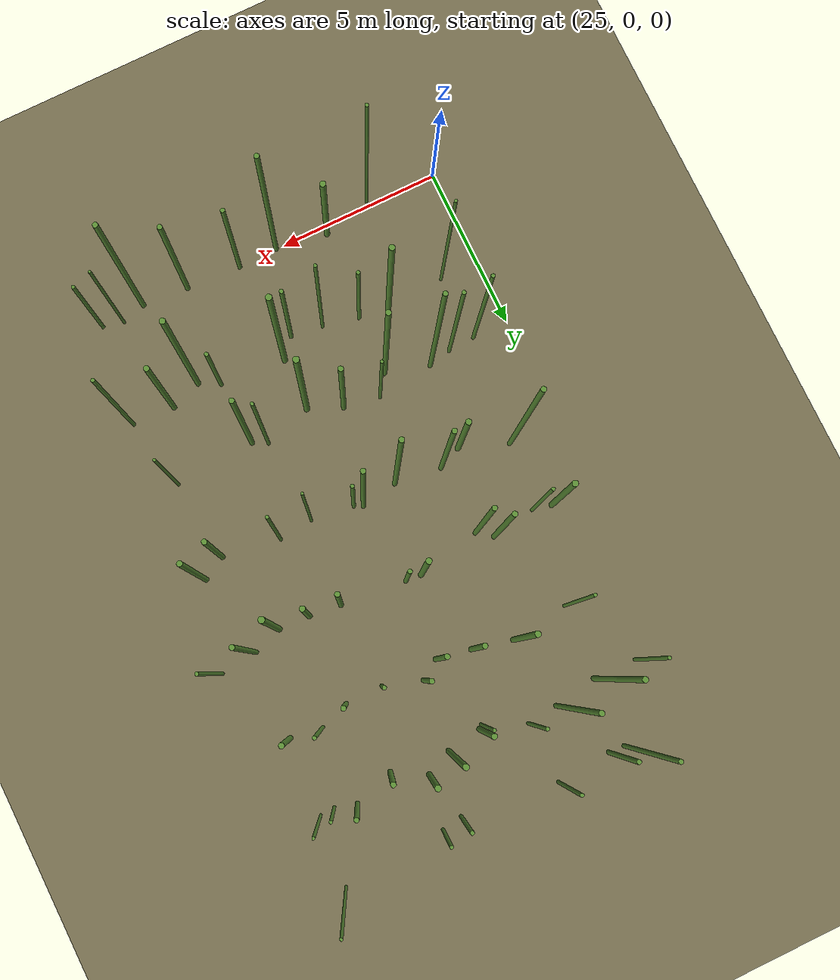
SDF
<sdf version="1.9">
 <world name="bamboo_field">
  <model name="ground_plane">
   <static>true</static>
   <link name="link">
    <collision name="collision">
     <geometry><plane><normal>0 0 1</normal><size>80.0 80.0</size></plane></geometry>
    </collision>
    <visual name="visual">
     <geometry><plane><normal>0 0 1</normal><size>80.0 80.0</size></plane></geometry>
     <material><diffuse>0.45 0.42 0.30 1</diffuse></material>
    </visual>
   </link>
  </model>
  <model name="bamboo_1063">
   <static>true</static>
   <pose>27.151205299307197 -0.18579587122227292 3.603537357282979 0 0 0</pose>
   <link name="link">
    <collision name="collision">
     <geometry>
      <cylinder><radius>0.051409100196508434</radius><length>7.207074714565958</length></cylinder>
     </geometry>
    </collision>
    <visual name="visual">
     <geometry>
      <cylinder><radius>0.051409100196508434</radius><length>7.207074714565958</length></cylinder>
     </geometry>
     <material><diffuse>0.35 0.55 0.20 1</diffuse><specular>0.1 0.1 0.1 1</specular></material>
    </visual>
   </link>
  </model>
  <model name="bamboo_1065">
   <static>true</static>
   <pose>28.669662617451696 0.21504905227408633 2.1695564290628377 0 0 0</pose>
   <link name="link">
    <collision name="collision">
     <geometry>
      <cylinder><radius>0.08718214201539054</radius><length>4.3391128581256755</length></cylinder>
     </geometry>
    </collision>
    <visual name="visual">
     <geometry>
      <cylinder><radius>0.08718214201539054</radius><length>4.3391128581256755</length></cylinder>
     </geometry>
     <material><diffuse>0.35 0.55 0.20 1</diffuse><specular>0.1 0.1 0.1 1</specular></material>
    </visual>
   </link>
  </model>
  <model name="bamboo_1066">
   <static>true</static>
   <pose>30.259173124526615 -0.03018710128848845 3.80502226314779 0 0 0</pose>
   <link name="link">
    <collision name="collision">
     <geometry><cylinder><radius>0.072073287722078</radius><length>7.61004452629558</length></cylinder></geometry>
    </collision>
    <visual name="visual">
     <geometry><cylinder><radius>0.072073287722078</radius><length>7.61004452629558</length></cylinder></geometry>
     <material><diffuse>0.35 0.55 0.20 1</diffuse><specular>0.1 0.1 0.1 1</specular></material>
    </visual>
   </link>
  </model>
  <model name="bamboo_1067">
   <static>true</static>
   <pose>31.485456023275006 0.004297065397154798 2.5914488497272923 0 0 0</pose>
   <link name="link">
    <collision name="collision">
     <geometry>
      <cylinder><radius>0.06598891816014839</radius><length>5.182897699454585</length></cylinder>
     </geometry>
    </collision>
    <visual name="visual">
     <geometry>
      <cylinder><radius>0.06598891816014839</radius><length>5.182897699454585</length></cylinder>
     </geometry>
     <material><diffuse>0.35 0.55 0.20 1</diffuse><specular>0.1 0.1 0.1 1</specular></material>
    </visual>
   </link>
  </model>
  <model name="bamboo_1069">
   <static>true</static>
   <pose>33.18020841615441 -0.0912146910937724 2.892378101406684 0 0 0</pose>
   <link name="link">
    <collision name="collision">
     <geometry>
      <cylinder><radius>0.07501475319413023</radius><length>5.784756202813368</length></cylinder>
     </geometry>
    </collision>
    <visual name="visual">
     <geometry>
      <cylinder><radius>0.07501475319413023</radius><length>5.784756202813368</length></cylinder>
     </geometry>
     <material><diffuse>0.35 0.55 0.20 1</diffuse><specular>0.1 0.1 0.1 1</specular></material>
    </visual>
   </link>
  </model>
  <model name="bamboo_1070">
   <static>true</static>
   <pose>34.599045712968866 -0.1891584008417987 3.775349793014393 0 0 0</pose>
   <link name="link">
    <collision name="collision">
     <geometry>
      <cylinder><radius>0.07487354827867843</radius><length>7.550699586028786</length></cylinder>
     </geometry>
    </collision>
    <visual name="visual">
     <geometry>
      <cylinder><radius>0.07487354827867843</radius><length>7.550699586028786</length></cylinder>
     </geometry>
     <material><diffuse>0.35 0.55 0.20 1</diffuse><specular>0.1 0.1 0.1 1</specular></material>
    </visual>
   </link>
  </model>
  <model name="bamboo_1071">
   <static>true</static>
   <pose>35.33843892711623 0.04572416082049302 2.668985849469804 0 0 0</pose>
   <link name="link">
    <collision name="collision">
     <geometry>
      <cylinder><radius>0.04184850861781593</radius><length>5.337971698939608</length></cylinder>
     </geometry>
    </collision>
    <visual name="visual">
     <geometry>
      <cylinder><radius>0.04184850861781593</radius><length>5.337971698939608</length></cylinder>
     </geometry>
     <material><diffuse>0.35 0.55 0.20 1</diffuse><specular>0.1 0.1 0.1 1</specular></material>
    </visual>
   </link>
  </model>
  <model name="bamboo_1072">
   <static>true</static>
   <pose>35.96752220383172 -0.10737728921609763 2.185639135713452 0 0 0</pose>
   <link name="link">
    <collision name="collision">
     <geometry>
      <cylinder><radius>0.054196392973413506</radius><length>4.371278271426904</length></cylinder>
     </geometry>
    </collision>
    <visual name="visual">
     <geometry>
      <cylinder><radius>0.054196392973413506</radius><length>4.371278271426904</length></cylinder>
     </geometry>
     <material><diffuse>0.35 0.55 0.20 1</diffuse><specular>0.1 0.1 0.1 1</specular></material>
    </visual>
   </link>
  </model>
  <model name="bamboo_1133">
   <static>true</static>
   <pose>26.191152922379885 2.9859162162090804 3.503926715420306 0 0 0</pose>
   <link name="link">
    <collision name="collision">
     <geometry>
      <cylinder><radius>0.04479151257027014</radius><length>7.007853430840612</length></cylinder>
     </geometry>
    </collision>
    <visual name="visual">
     <geometry>
      <cylinder><radius>0.04479151257027014</radius><length>7.007853430840612</length></cylinder>
     </geometry>
     <material><diffuse>0.35 0.55 0.20 1</diffuse><specular>0.1 0.1 0.1 1</specular></material>
    </visual>
   </link>
  </model>
  <model name="bamboo_1134">
   <static>true</static>
   <pose>28.083163688541298 3.222522515503693 3.2384611085247683 0 0 0</pose>
   <link name="link">
    <collision name="collision">
     <geometry>
      <cylinder><radius>0.08399690837420921</radius><length>6.476922217049537</length></cylinder>
     </geometry>
    </collision>
    <visual name="visual">
     <geometry>
      <cylinder><radius>0.08399690837420921</radius><length>6.476922217049537</length></cylinder>
     </geometry>
     <material><diffuse>0.35 0.55 0.20 1</diffuse><specular>0.1 0.1 0.1 1</specular></material>
    </visual>
   </link>
  </model>
  <model name="bamboo_1135">
   <static>true</static>
   <pose>28.930486568744914 2.982835694298273 2.3849626348615676 0 0 0</pose>
   <link name="link">
    <collision name="collision">
     <geometry>
      <cylinder><radius>0.0564096834465166</radius><length>4.769925269723135</length></cylinder>
     </geometry>
    </collision>
    <visual name="visual">
     <geometry>
      <cylinder><radius>0.0564096834465166</radius><length>4.769925269723135</length></cylinder>
     </geometry>
     <material><diffuse>0.35 0.55 0.20 1</diffuse><specular>0.1 0.1 0.1 1</specular></material>
    </visual>
   </link>
  </model>
  <model name="bamboo_1136">
   <static>true</static>
   <pose>30.03177621495902 2.745613390471645 3.1464242655930166 0 0 0</pose>
   <link name="link">
    <collision name="collision">
     <geometry>
      <cylinder><radius>0.04968072708858921</radius><length>6.292848531186033</length></cylinder>
     </geometry>
    </collision>
    <visual name="visual">
     <geometry>
      <cylinder><radius>0.04968072708858921</radius><length>6.292848531186033</length></cylinder>
     </geometry>
     <material><diffuse>0.35 0.55 0.20 1</diffuse><specular>0.1 0.1 0.1 1</specular></material>
    </visual>
   </link>
  </model>
  <model name="bamboo_1137">
   <static>true</static>
   <pose>31.011942310209722 2.608556946933893 2.4863049557458266 0 0 0</pose>
   <link name="link">
    <collision name="collision">
     <geometry>
      <cylinder><radius>0.06223121568036206</radius><length>4.972609911491653</length></cylinder>
     </geometry>
    </collision>
    <visual name="visual">
     <geometry>
      <cylinder><radius>0.06223121568036206</radius><length>4.972609911491653</length></cylinder>
     </geometry>
     <material><diffuse>0.35 0.55 0.20 1</diffuse><specular>0.1 0.1 0.1 1</specular></material>
    </visual>
   </link>
  </model>
  <model name="bamboo_1138">
   <static>true</static>
   <pose>31.496522912792457 3.1858684559576793 3.5087472700736466 0 0 0</pose>
   <link name="link">
    <collision name="collision">
     <geometry>
      <cylinder><radius>0.08798706756968236</radius><length>7.017494540147293</length></cylinder>
     </geometry>
    </collision>
    <visual name="visual">
     <geometry>
      <cylinder><radius>0.08798706756968236</radius><length>7.017494540147293</length></cylinder>
     </geometry>
     <material><diffuse>0.35 0.55 0.20 1</diffuse><specular>0.1 0.1 0.1 1</specular></material>
    </visual>
   </link>
  </model>
  <model name="bamboo_1139">
   <static>true</static>
   <pose>33.52286711488914 3.041023380964454 2.0161636846911994 0 0 0</pose>
   <link name="link">
    <collision name="collision">
     <geometry>
      <cylinder><radius>0.05844149975861276</radius><length>4.032327369382399</length></cylinder>
     </geometry>
    </collision>
    <visual name="visual">
     <geometry>
      <cylinder><radius>0.05844149975861276</radius><length>4.032327369382399</length></cylinder>
     </geometry>
     <material><diffuse>0.35 0.55 0.20 1</diffuse><specular>0.1 0.1 0.1 1</specular></material>
    </visual>
   </link>
  </model>
  <model name="bamboo_1140">
   <static>true</static>
   <pose>34.130729032915745 2.702998109685367 3.717404411056746 0 0 0</pose>
   <link name="link">
    <collision name="collision">
     <geometry>
      <cylinder><radius>0.08175874648967754</radius><length>7.434808822113492</length></cylinder>
     </geometry>
    </collision>
    <visual name="visual">
     <geometry>
      <cylinder><radius>0.08175874648967754</radius><length>7.434808822113492</length></cylinder>
     </geometry>
     <material><diffuse>0.35 0.55 0.20 1</diffuse><specular>0.1 0.1 0.1 1</specular></material>
    </visual>
   </link>
  </model>
  <model name="bamboo_1141">
   <static>true</static>
   <pose>35.0829370933037 3.052560222677856 2.6831038473450475 0 0 0</pose>
   <link name="link">
    <collision name="collision">
     <geometry>
      <cylinder><radius>0.07926319035455726</radius><length>5.366207694690095</length></cylinder>
     </geometry>
    </collision>
    <visual name="visual">
     <geometry>
      <cylinder><radius>0.07926319035455726</radius><length>5.366207694690095</length></cylinder>
     </geometry>
     <material><diffuse>0.35 0.55 0.20 1</diffuse><specular>0.1 0.1 0.1 1</specular></material>
    </visual>
   </link>
  </model>
  <model name="bamboo_1142">
   <static>true</static>
   <pose>36.38234972073929 2.9974853150282 3.1568214977696076 0 0 0</pose>
   <link name="link">
    <collision name="collision">
     <geometry>
      <cylinder><radius>0.05655727172345246</radius><length>6.313642995539215</length></cylinder>
     </geometry>
    </collision>
    <visual name="visual">
     <geometry>
      <cylinder><radius>0.05655727172345246</radius><length>6.313642995539215</length></cylinder>
     </geometry>
     <material><diffuse>0.35 0.55 0.20 1</diffuse><specular>0.1 0.1 0.1 1</specular></material>
    </visual>
   </link>
  </model>
  <model name="bamboo_1204">
   <static>true</static>
   <pose>26.11127046764274 5.022055672164562 3.270706903364007 0 0 0</pose>
   <link name="link">
    <collision name="collision">
     <geometry>
      <cylinder><radius>0.056602327367414176</radius><length>6.541413806728014</length></cylinder>
     </geometry>
    </collision>
    <visual name="visual">
     <geometry>
      <cylinder><radius>0.056602327367414176</radius><length>6.541413806728014</length></cylinder>
     </geometry>
     <material><diffuse>0.35 0.55 0.20 1</diffuse><specular>0.1 0.1 0.1 1</specular></material>
    </visual>
   </link>
  </model>
  <model name="bamboo_1205">
   <static>true</static>
   <pose>26.942641070186752 5.067138769332645 3.2170666443124896 0 0 0</pose>
   <link name="link">
    <collision name="collision">
     <geometry>
      <cylinder><radius>0.056755260906237656</radius><length>6.434133288624979</length></cylinder>
     </geometry>
    </collision>
    <visual name="visual">
     <geometry>
      <cylinder><radius>0.056755260906237656</radius><length>6.434133288624979</length></cylinder>
     </geometry>
     <material><diffuse>0.35 0.55 0.20 1</diffuse><specular>0.1 0.1 0.1 1</specular></material>
    </visual>
   </link>
  </model>
  <model name="bamboo_1206">
   <static>true</static>
   <pose>27.65217614514598 5.230922861800224 3.976761728723223 0 0 0</pose>
   <link name="link">
    <collision name="collision">
     <geometry>
      <cylinder><radius>0.06937342737042498</radius><length>7.953523457446446</length></cylinder>
     </geometry>
    </collision>
    <visual name="visual">
     <geometry>
      <cylinder><radius>0.06937342737042498</radius><length>7.953523457446446</length></cylinder>
     </geometry>
     <material><diffuse>0.35 0.55 0.20 1</diffuse><specular>0.1 0.1 0.1 1</specular></material>
    </visual>
   </link>
  </model>
  <model name="bamboo_1207">
   <static>true</static>
   <pose>28.981900142488165 4.841424901180821 3.514491487198259 0 0 0</pose>
   <link name="link">
    <collision name="collision">
     <geometry>
      <cylinder><radius>0.07689566419590185</radius><length>7.028982974396518</length></cylinder>
     </geometry>
    </collision>
    <visual name="visual">
     <geometry>
      <cylinder><radius>0.07689566419590185</radius><length>7.028982974396518</length></cylinder>
     </geometry>
     <material><diffuse>0.35 0.55 0.20 1</diffuse><specular>0.1 0.1 0.1 1</specular></material>
    </visual>
   </link>
  </model>
  <model name="bamboo_1208">
   <static>true</static>
   <pose>29.424407934831084 5.445865187276462 2.4087706601923538 0 0 0</pose>
   <link name="link">
    <collision name="collision">
     <geometry>
      <cylinder><radius>0.04758352926960138</radius><length>4.8175413203847075</length></cylinder>
     </geometry>
    </collision>
    <visual name="visual">
     <geometry>
      <cylinder><radius>0.04758352926960138</radius><length>4.8175413203847075</length></cylinder>
     </geometry>
     <material><diffuse>0.35 0.55 0.20 1</diffuse><specular>0.1 0.1 0.1 1</specular></material>
    </visual>
   </link>
  </model>
  <model name="bamboo_1209">
   <static>true</static>
   <pose>30.531791819700995 5.250000239712782 2.6573797037343234 0 0 0</pose>
   <link name="link">
    <collision name="collision">
     <geometry>
      <cylinder><radius>0.07696278180082586</radius><length>5.314759407468647</length></cylinder>
     </geometry>
    </collision>
    <visual name="visual">
     <geometry>
      <cylinder><radius>0.07696278180082586</radius><length>5.314759407468647</length></cylinder>
     </geometry>
     <material><diffuse>0.35 0.55 0.20 1</diffuse><specular>0.1 0.1 0.1 1</specular></material>
    </visual>
   </link>
  </model>
  <model name="bamboo_1210">
   <static>true</static>
   <pose>31.543219435425137 4.816064122193548 3.2960928501592655 0 0 0</pose>
   <link name="link">
    <collision name="collision">
     <geometry>
      <cylinder><radius>0.08887837522286675</radius><length>6.592185700318531</length></cylinder>
     </geometry>
    </collision>
    <visual name="visual">
     <geometry>
      <cylinder><radius>0.08887837522286675</radius><length>6.592185700318531</length></cylinder>
     </geometry>
     <material><diffuse>0.35 0.55 0.20 1</diffuse><specular>0.1 0.1 0.1 1</specular></material>
    </visual>
   </link>
  </model>
  <model name="bamboo_1211">
   <static>true</static>
   <pose>33.01471724091726 5.264983002950912 3.078623504252344 0 0 0</pose>
   <link name="link">
    <collision name="collision">
     <geometry>
      <cylinder><radius>0.05211244918622726</radius><length>6.157247008504688</length></cylinder>
     </geometry>
    </collision>
    <visual name="visual">
     <geometry>
      <cylinder><radius>0.05211244918622726</radius><length>6.157247008504688</length></cylinder>
     </geometry>
     <material><diffuse>0.35 0.55 0.20 1</diffuse><specular>0.1 0.1 0.1 1</specular></material>
    </visual>
   </link>
  </model>
  <model name="bamboo_1212">
   <static>true</static>
   <pose>33.446450164776884 5.024624683345163 3.216126395355251 0 0 0</pose>
   <link name="link">
    <collision name="collision">
     <geometry>
      <cylinder><radius>0.07597511098624916</radius><length>6.432252790710502</length></cylinder>
     </geometry>
    </collision>
    <visual name="visual">
     <geometry>
      <cylinder><radius>0.07597511098624916</radius><length>6.432252790710502</length></cylinder>
     </geometry>
     <material><diffuse>0.35 0.55 0.20 1</diffuse><specular>0.1 0.1 0.1 1</specular></material>
    </visual>
   </link>
  </model>
  <model name="bamboo_1213">
   <static>true</static>
   <pose>35.945518826004374 5.21432024543746 2.4084400255316645 0 0 0</pose>
   <link name="link">
    <collision name="collision">
     <geometry>
      <cylinder><radius>0.04707660054351185</radius><length>4.816880051063329</length></cylinder>
     </geometry>
    </collision>
    <visual name="visual">
     <geometry>
      <cylinder><radius>0.04707660054351185</radius><length>4.816880051063329</length></cylinder>
     </geometry>
     <material><diffuse>0.35 0.55 0.20 1</diffuse><specular>0.1 0.1 0.1 1</specular></material>
    </visual>
   </link>
  </model>
  <model name="bamboo_1268">
   <static>true</static>
   <pose>26.564888147075127 8.379139494467786 3.9769683757190517 0 0 0</pose>
   <link name="link">
    <collision name="collision">
     <geometry>
      <cylinder><radius>0.0739158903008324</radius><length>7.953936751438103</length></cylinder>
     </geometry>
    </collision>
    <visual name="visual">
     <geometry>
      <cylinder><radius>0.0739158903008324</radius><length>7.953936751438103</length></cylinder>
     </geometry>
     <material><diffuse>0.35 0.55 0.20 1</diffuse><specular>0.1 0.1 0.1 1</specular></material>
    </visual>
   </link>
  </model>
  <model name="bamboo_1269">
   <static>true</static>
   <pose>28.014319883394656 7.839603801937317 2.19209546380615 0 0 0</pose>
   <link name="link">
    <collision name="collision">
     <geometry><cylinder><radius>0.08629926683617066</radius><length>4.3841909276123</length></cylinder></geometry>
    </collision>
    <visual name="visual">
     <geometry><cylinder><radius>0.08629926683617066</radius><length>4.3841909276123</length></cylinder></geometry>
     <material><diffuse>0.35 0.55 0.20 1</diffuse><specular>0.1 0.1 0.1 1</specular></material>
    </visual>
   </link>
  </model>
  <model name="bamboo_1270">
   <static>true</static>
   <pose>28.73220647896587 8.152741568985803 3.186784780529461 0 0 0</pose>
   <link name="link">
    <collision name="collision">
     <geometry>
      <cylinder><radius>0.07250489024016477</radius><length>6.373569561058922</length></cylinder>
     </geometry>
    </collision>
    <visual name="visual">
     <geometry>
      <cylinder><radius>0.07250489024016477</radius><length>6.373569561058922</length></cylinder>
     </geometry>
     <material><diffuse>0.35 0.55 0.20 1</diffuse><specular>0.1 0.1 0.1 1</specular></material>
    </visual>
   </link>
  </model>
  <model name="bamboo_1271">
   <static>true</static>
   <pose>30.168295241206735 7.976620934886778 3.9091107274962513 0 0 0</pose>
   <link name="link">
    <collision name="collision">
     <geometry>
      <cylinder><radius>0.07439920529579946</radius><length>7.818221454992503</length></cylinder>
     </geometry>
    </collision>
    <visual name="visual">
     <geometry>
      <cylinder><radius>0.07439920529579946</radius><length>7.818221454992503</length></cylinder>
     </geometry>
     <material><diffuse>0.35 0.55 0.20 1</diffuse><specular>0.1 0.1 0.1 1</specular></material>
    </visual>
   </link>
  </model>
  <model name="bamboo_1272">
   <static>true</static>
   <pose>31.293482356932326 8.169078441874051 3.555461622233298 0 0 0</pose>
   <link name="link">
    <collision name="collision">
     <geometry>
      <cylinder><radius>0.0729259425735515</radius><length>7.110923244466596</length></cylinder>
     </geometry>
    </collision>
    <visual name="visual">
     <geometry>
      <cylinder><radius>0.0729259425735515</radius><length>7.110923244466596</length></cylinder>
     </geometry>
     <material><diffuse>0.35 0.55 0.20 1</diffuse><specular>0.1 0.1 0.1 1</specular></material>
    </visual>
   </link>
  </model>
  <model name="bamboo_1273">
   <static>true</static>
   <pose>31.55598761380594 8.056313695040576 2.240000771233851 0 0 0</pose>
   <link name="link">
    <collision name="collision">
     <geometry>
      <cylinder><radius>0.05836615279749126</radius><length>4.480001542467702</length></cylinder>
     </geometry>
    </collision>
    <visual name="visual">
     <geometry>
      <cylinder><radius>0.05836615279749126</radius><length>4.480001542467702</length></cylinder>
     </geometry>
     <material><diffuse>0.35 0.55 0.20 1</diffuse><specular>0.1 0.1 0.1 1</specular></material>
    </visual>
   </link>
  </model>
  <model name="bamboo_1274">
   <static>true</static>
   <pose>32.866500000169715 7.905468151273225 3.1459638176463445 0 0 0</pose>
   <link name="link">
    <collision name="collision">
     <geometry>
      <cylinder><radius>0.04115133806573245</radius><length>6.291927635292689</length></cylinder>
     </geometry>
    </collision>
    <visual name="visual">
     <geometry>
      <cylinder><radius>0.04115133806573245</radius><length>6.291927635292689</length></cylinder>
     </geometry>
     <material><diffuse>0.35 0.55 0.20 1</diffuse><specular>0.1 0.1 0.1 1</specular></material>
    </visual>
   </link>
  </model>
  <model name="bamboo_1275">
   <static>true</static>
   <pose>33.91501997656277 8.017420321431002 2.96838295459679 0 0 0</pose>
   <link name="link">
    <collision name="collision">
     <geometry>
      <cylinder><radius>0.04905482969580586</radius><length>5.93676590919358</length></cylinder>
     </geometry>
    </collision>
    <visual name="visual">
     <geometry>
      <cylinder><radius>0.04905482969580586</radius><length>5.93676590919358</length></cylinder>
     </geometry>
     <material><diffuse>0.35 0.55 0.20 1</diffuse><specular>0.1 0.1 0.1 1</specular></material>
    </visual>
   </link>
  </model>
  <model name="bamboo_1276">
   <static>true</static>
   <pose>35.686778438561205 7.727683258282409 2.369779697140016 0 0 0</pose>
   <link name="link">
    <collision name="collision">
     <geometry>
      <cylinder><radius>0.07976124135312104</radius><length>4.739559394280032</length></cylinder>
     </geometry>
    </collision>
    <visual name="visual">
     <geometry>
      <cylinder><radius>0.07976124135312104</radius><length>4.739559394280032</length></cylinder>
     </geometry>
     <material><diffuse>0.35 0.55 0.20 1</diffuse><specular>0.1 0.1 0.1 1</specular></material>
    </visual>
   </link>
  </model>
  <model name="bamboo_1277">
   <static>true</static>
   <pose>36.40342572916701 8.123165863990275 2.977126524805004 0 0 0</pose>
   <link name="link">
    <collision name="collision">
     <geometry>
      <cylinder><radius>0.08060981293398427</radius><length>5.954253049610008</length></cylinder>
     </geometry>
    </collision>
    <visual name="visual">
     <geometry>
      <cylinder><radius>0.08060981293398427</radius><length>5.954253049610008</length></cylinder>
     </geometry>
     <material><diffuse>0.35 0.55 0.20 1</diffuse><specular>0.1 0.1 0.1 1</specular></material>
    </visual>
   </link>
  </model>
  <model name="bamboo_1338">
   <static>true</static>
   <pose>26.26337637309631 10.567030056091257 2.331036440100445 0 0 0</pose>
   <link name="link">
    <collision name="collision">
     <geometry>
      <cylinder><radius>0.08857692087999937</radius><length>4.66207288020089</length></cylinder>
     </geometry>
    </collision>
    <visual name="visual">
     <geometry>
      <cylinder><radius>0.08857692087999937</radius><length>4.66207288020089</length></cylinder>
     </geometry>
     <material><diffuse>0.35 0.55 0.20 1</diffuse><specular>0.1 0.1 0.1 1</specular></material>
    </visual>
   </link>
  </model>
  <model name="bamboo_1339">
   <static>true</static>
   <pose>26.86161792729646 10.450590167619369 2.368132680708178 0 0 0</pose>
   <link name="link">
    <collision name="collision">
     <geometry>
      <cylinder><radius>0.053574709447817725</radius><length>4.736265361416356</length></cylinder>
     </geometry>
    </collision>
    <visual name="visual">
     <geometry>
      <cylinder><radius>0.053574709447817725</radius><length>4.736265361416356</length></cylinder>
     </geometry>
     <material><diffuse>0.35 0.55 0.20 1</diffuse><specular>0.1 0.1 0.1 1</specular></material>
    </visual>
   </link>
  </model>
  <model name="bamboo_1340">
   <static>true</static>
   <pose>28.223732302437885 10.665676003871233 2.910881973859932 0 0 0</pose>
   <link name="link">
    <collision name="collision">
     <geometry>
      <cylinder><radius>0.07953234386175709</radius><length>5.821763947719864</length></cylinder>
     </geometry>
    </collision>
    <visual name="visual">
     <geometry>
      <cylinder><radius>0.07953234386175709</radius><length>5.821763947719864</length></cylinder>
     </geometry>
     <material><diffuse>0.35 0.55 0.20 1</diffuse><specular>0.1 0.1 0.1 1</specular></material>
    </visual>
   </link>
  </model>
  <model name="bamboo_1341">
   <static>true</static>
   <pose>28.669444923898258 10.330053488284559 3.1043018418416883 0 0 0</pose>
   <link name="link">
    <collision name="collision">
     <geometry>
      <cylinder><radius>0.07541273521949152</radius><length>6.208603683683377</length></cylinder>
     </geometry>
    </collision>
    <visual name="visual">
     <geometry>
      <cylinder><radius>0.07541273521949152</radius><length>6.208603683683377</length></cylinder>
     </geometry>
     <material><diffuse>0.35 0.55 0.20 1</diffuse><specular>0.1 0.1 0.1 1</specular></material>
    </visual>
   </link>
  </model>
  <model name="bamboo_1342">
   <static>true</static>
   <pose>30.65764597937186 10.747813949201618 2.540869710942847 0 0 0</pose>
   <link name="link">
    <collision name="collision">
     <geometry>
      <cylinder><radius>0.08636239786929316</radius><length>5.081739421885694</length></cylinder>
     </geometry>
    </collision>
    <visual name="visual">
     <geometry>
      <cylinder><radius>0.08636239786929316</radius><length>5.081739421885694</length></cylinder>
     </geometry>
     <material><diffuse>0.35 0.55 0.20 1</diffuse><specular>0.1 0.1 0.1 1</specular></material>
    </visual>
   </link>
  </model>
  <model name="bamboo_1343">
   <static>true</static>
   <pose>31.147037615494835 10.721736437254288 2.002799922952734 0 0 0</pose>
   <link name="link">
    <collision name="collision">
     <geometry>
      <cylinder><radius>0.06672974620617361</radius><length>4.005599845905468</length></cylinder>
     </geometry>
    </collision>
    <visual name="visual">
     <geometry>
      <cylinder><radius>0.06672974620617361</radius><length>4.005599845905468</length></cylinder>
     </geometry>
     <material><diffuse>0.35 0.55 0.20 1</diffuse><specular>0.1 0.1 0.1 1</specular></material>
    </visual>
   </link>
  </model>
  <model name="bamboo_1344">
   <static>true</static>
   <pose>33.16168046168404 10.525369360537939 2.816685764466759 0 0 0</pose>
   <link name="link">
    <collision name="collision">
     <geometry>
      <cylinder><radius>0.07610397954792217</radius><length>5.633371528933518</length></cylinder>
     </geometry>
    </collision>
    <visual name="visual">
     <geometry>
      <cylinder><radius>0.07610397954792217</radius><length>5.633371528933518</length></cylinder>
     </geometry>
     <material><diffuse>0.35 0.55 0.20 1</diffuse><specular>0.1 0.1 0.1 1</specular></material>
    </visual>
   </link>
  </model>
  <model name="bamboo_1345">
   <static>true</static>
   <pose>34.132207635558856 10.421839429599963 2.4385591854226094 0 0 0</pose>
   <link name="link">
    <collision name="collision">
     <geometry>
      <cylinder><radius>0.08119658930431423</radius><length>4.877118370845219</length></cylinder>
     </geometry>
    </collision>
    <visual name="visual">
     <geometry>
      <cylinder><radius>0.08119658930431423</radius><length>4.877118370845219</length></cylinder>
     </geometry>
     <material><diffuse>0.35 0.55 0.20 1</diffuse><specular>0.1 0.1 0.1 1</specular></material>
    </visual>
   </link>
  </model>
  <model name="bamboo_1346">
   <static>true</static>
   <pose>35.091549523083245 10.37263467496897 3.556371985957278 0 0 0</pose>
   <link name="link">
    <collision name="collision">
     <geometry>
      <cylinder><radius>0.08893811936228793</radius><length>7.112743971914556</length></cylinder>
     </geometry>
    </collision>
    <visual name="visual">
     <geometry>
      <cylinder><radius>0.08893811936228793</radius><length>7.112743971914556</length></cylinder>
     </geometry>
     <material><diffuse>0.35 0.55 0.20 1</diffuse><specular>0.1 0.1 0.1 1</specular></material>
    </visual>
   </link>
  </model>
  <model name="bamboo_1347">
   <static>true</static>
   <pose>35.987512086910904 10.683739224723304 3.7400515768860227 0 0 0</pose>
   <link name="link">
    <collision name="collision">
     <geometry>
      <cylinder><radius>0.07269123593618912</radius><length>7.4801031537720455</length></cylinder>
     </geometry>
    </collision>
    <visual name="visual">
     <geometry>
      <cylinder><radius>0.07269123593618912</radius><length>7.4801031537720455</length></cylinder>
     </geometry>
     <material><diffuse>0.35 0.55 0.20 1</diffuse><specular>0.1 0.1 0.1 1</specular></material>
    </visual>
   </link>
  </model>
  <model name="bamboo_1348">
   <static>true</static>
   <pose>37.13565009260408 10.825153150553676 3.1633275990158416 0 0 0</pose>
   <link name="link">
    <collision name="collision">
     <geometry>
      <cylinder><radius>0.053439675123959265</radius><length>6.326655198031683</length></cylinder>
     </geometry>
    </collision>
    <visual name="visual">
     <geometry>
      <cylinder><radius>0.053439675123959265</radius><length>6.326655198031683</length></cylinder>
     </geometry>
     <material><diffuse>0.35 0.55 0.20 1</diffuse><specular>0.1 0.1 0.1 1</specular></material>
    </visual>
   </link>
  </model>
  <model name="bamboo_1399">
   <static>true</static>
   <pose>27.28341892980946 13.390672183309842 2.7985608406935514 0 0 0</pose>
   <link name="link">
    <collision name="collision">
     <geometry>
      <cylinder><radius>0.04791029020031307</radius><length>5.597121681387103</length></cylinder>
     </geometry>
    </collision>
    <visual name="visual">
     <geometry>
      <cylinder><radius>0.04791029020031307</radius><length>5.597121681387103</length></cylinder>
     </geometry>
     <material><diffuse>0.35 0.55 0.20 1</diffuse><specular>0.1 0.1 0.1 1</specular></material>
    </visual>
   </link>
  </model>
  <model name="bamboo_1400">
   <static>true</static>
   <pose>29.063672105642624 13.63116077036097 2.9297059939670422 0 0 0</pose>
   <link name="link">
    <collision name="collision">
     <geometry>
      <cylinder><radius>0.08500632577325766</radius><length>5.8594119879340845</length></cylinder>
     </geometry>
    </collision>
    <visual name="visual">
     <geometry>
      <cylinder><radius>0.08500632577325766</radius><length>5.8594119879340845</length></cylinder>
     </geometry>
     <material><diffuse>0.35 0.55 0.20 1</diffuse><specular>0.1 0.1 0.1 1</specular></material>
    </visual>
   </link>
  </model>
  <model name="bamboo_1401">
   <static>true</static>
   <pose>30.300684909962765 13.341015487644313 2.3989419996965 0 0 0</pose>
   <link name="link">
    <collision name="collision">
     <geometry><cylinder><radius>0.07841083252173453</radius><length>4.797883999393</length></cylinder></geometry>
    </collision>
    <visual name="visual">
     <geometry><cylinder><radius>0.07841083252173453</radius><length>4.797883999393</length></cylinder></geometry>
     <material><diffuse>0.35 0.55 0.20 1</diffuse><specular>0.1 0.1 0.1 1</specular></material>
    </visual>
   </link>
  </model>
  <model name="bamboo_1402">
   <static>true</static>
   <pose>31.364018300726336 13.145713721262606 2.9524389373410704 0 0 0</pose>
   <link name="link">
    <collision name="collision">
     <geometry>
      <cylinder><radius>0.0751145419259685</radius><length>5.904877874682141</length></cylinder>
     </geometry>
    </collision>
    <visual name="visual">
     <geometry>
      <cylinder><radius>0.0751145419259685</radius><length>5.904877874682141</length></cylinder>
     </geometry>
     <material><diffuse>0.35 0.55 0.20 1</diffuse><specular>0.1 0.1 0.1 1</specular></material>
    </visual>
   </link>
  </model>
  <model name="bamboo_1403">
   <static>true</static>
   <pose>31.953378481615974 13.539670273413353 2.640373238447406 0 0 0</pose>
   <link name="link">
    <collision name="collision">
     <geometry>
      <cylinder><radius>0.07201081909741094</radius><length>5.280746476894812</length></cylinder>
     </geometry>
    </collision>
    <visual name="visual">
     <geometry>
      <cylinder><radius>0.07201081909741094</radius><length>5.280746476894812</length></cylinder>
     </geometry>
     <material><diffuse>0.35 0.55 0.20 1</diffuse><specular>0.1 0.1 0.1 1</specular></material>
    </visual>
   </link>
  </model>
  <model name="bamboo_1404">
   <static>true</static>
   <pose>33.114952880959756 13.156770344620796 2.860219478287709 0 0 0</pose>
   <link name="link">
    <collision name="collision">
     <geometry>
      <cylinder><radius>0.05807463794557718</radius><length>5.720438956575418</length></cylinder>
     </geometry>
    </collision>
    <visual name="visual">
     <geometry>
      <cylinder><radius>0.05807463794557718</radius><length>5.720438956575418</length></cylinder>
     </geometry>
     <material><diffuse>0.35 0.55 0.20 1</diffuse><specular>0.1 0.1 0.1 1</specular></material>
    </visual>
   </link>
  </model>
  <model name="bamboo_1405">
   <static>true</static>
   <pose>34.275755479131114 13.177429982453226 2.5396962203394065 0 0 0</pose>
   <link name="link">
    <collision name="collision">
     <geometry>
      <cylinder><radius>0.07418357201774431</radius><length>5.079392440678813</length></cylinder>
     </geometry>
    </collision>
    <visual name="visual">
     <geometry>
      <cylinder><radius>0.07418357201774431</radius><length>5.079392440678813</length></cylinder>
     </geometry>
     <material><diffuse>0.35 0.55 0.20 1</diffuse><specular>0.1 0.1 0.1 1</specular></material>
    </visual>
   </link>
  </model>
  <model name="bamboo_1406">
   <static>true</static>
   <pose>35.168380384688255 13.486260644157296 3.4244134046349064 0 0 0</pose>
   <link name="link">
    <collision name="collision">
     <geometry>
      <cylinder><radius>0.054916840148633676</radius><length>6.848826809269813</length></cylinder>
     </geometry>
    </collision>
    <visual name="visual">
     <geometry>
      <cylinder><radius>0.054916840148633676</radius><length>6.848826809269813</length></cylinder>
     </geometry>
     <material><diffuse>0.35 0.55 0.20 1</diffuse><specular>0.1 0.1 0.1 1</specular></material>
    </visual>
   </link>
  </model>
  <model name="bamboo_1407">
   <static>true</static>
   <pose>36.15748496976511 13.358329487585213 2.1848825200640647 0 0 0</pose>
   <link name="link">
    <collision name="collision">
     <geometry>
      <cylinder><radius>0.0815274545750552</radius><length>4.369765040128129</length></cylinder>
     </geometry>
    </collision>
    <visual name="visual">
     <geometry>
      <cylinder><radius>0.0815274545750552</radius><length>4.369765040128129</length></cylinder>
     </geometry>
     <material><diffuse>0.35 0.55 0.20 1</diffuse><specular>0.1 0.1 0.1 1</specular></material>
    </visual>
   </link>
  </model>
  <model name="bamboo_1462">
   <static>true</static>
   <pose>26.131815414468118 15.692232999793614 2.340677260232842 0 0 0</pose>
   <link name="link">
    <collision name="collision">
     <geometry>
      <cylinder><radius>0.05349560271898837</radius><length>4.681354520465684</length></cylinder>
     </geometry>
    </collision>
    <visual name="visual">
     <geometry>
      <cylinder><radius>0.05349560271898837</radius><length>4.681354520465684</length></cylinder>
     </geometry>
     <material><diffuse>0.35 0.55 0.20 1</diffuse><specular>0.1 0.1 0.1 1</specular></material>
    </visual>
   </link>
  </model>
  <model name="bamboo_1463">
   <static>true</static>
   <pose>27.461981953616732 15.659053108400292 3.7755968250357164 0 0 0</pose>
   <link name="link">
    <collision name="collision">
     <geometry>
      <cylinder><radius>0.07765174134974565</radius><length>7.551193650071433</length></cylinder>
     </geometry>
    </collision>
    <visual name="visual">
     <geometry>
      <cylinder><radius>0.07765174134974565</radius><length>7.551193650071433</length></cylinder>
     </geometry>
     <material><diffuse>0.35 0.55 0.20 1</diffuse><specular>0.1 0.1 0.1 1</specular></material>
    </visual>
   </link>
  </model>
  <model name="bamboo_1464">
   <static>true</static>
   <pose>28.800981990761752 15.881352572388103 3.9526989054760575 0 0 0</pose>
   <link name="link">
    <collision name="collision">
     <geometry>
      <cylinder><radius>0.07306344877559834</radius><length>7.905397810952115</length></cylinder>
     </geometry>
    </collision>
    <visual name="visual">
     <geometry>
      <cylinder><radius>0.07306344877559834</radius><length>7.905397810952115</length></cylinder>
     </geometry>
     <material><diffuse>0.35 0.55 0.20 1</diffuse><specular>0.1 0.1 0.1 1</specular></material>
    </visual>
   </link>
  </model>
  <model name="bamboo_1465">
   <static>true</static>
   <pose>29.756936908138602 15.980757998411772 2.1655885480792776 0 0 0</pose>
   <link name="link">
    <collision name="collision">
     <geometry>
      <cylinder><radius>0.05481170941568217</radius><length>4.331177096158555</length></cylinder>
     </geometry>
    </collision>
    <visual name="visual">
     <geometry>
      <cylinder><radius>0.05481170941568217</radius><length>4.331177096158555</length></cylinder>
     </geometry>
     <material><diffuse>0.35 0.55 0.20 1</diffuse><specular>0.1 0.1 0.1 1</specular></material>
    </visual>
   </link>
  </model>
  <model name="bamboo_1466">
   <static>true</static>
   <pose>31.010004201307193 15.411934215901233 2.15603345744527 0 0 0</pose>
   <link name="link">
    <collision name="collision">
     <geometry>
      <cylinder><radius>0.050294561719508864</radius><length>4.31206691489054</length></cylinder>
     </geometry>
    </collision>
    <visual name="visual">
     <geometry>
      <cylinder><radius>0.050294561719508864</radius><length>4.31206691489054</length></cylinder>
     </geometry>
     <material><diffuse>0.35 0.55 0.20 1</diffuse><specular>0.1 0.1 0.1 1</specular></material>
    </visual>
   </link>
  </model>
  <model name="bamboo_1467">
   <static>true</static>
   <pose>31.108194100336707 15.515810386574188 2.3758348597235317 0 0 0</pose>
   <link name="link">
    <collision name="collision">
     <geometry>
      <cylinder><radius>0.08092557221094526</radius><length>4.751669719447063</length></cylinder>
     </geometry>
    </collision>
    <visual name="visual">
     <geometry>
      <cylinder><radius>0.08092557221094526</radius><length>4.751669719447063</length></cylinder>
     </geometry>
     <material><diffuse>0.35 0.55 0.20 1</diffuse><specular>0.1 0.1 0.1 1</specular></material>
    </visual>
   </link>
  </model>
  <model name="bamboo_1468">
   <static>true</static>
   <pose>32.18950683841469 15.687562741739264 3.520975916748961 0 0 0</pose>
   <link name="link">
    <collision name="collision">
     <geometry>
      <cylinder><radius>0.08292294171205127</radius><length>7.041951833497922</length></cylinder>
     </geometry>
    </collision>
    <visual name="visual">
     <geometry>
      <cylinder><radius>0.08292294171205127</radius><length>7.041951833497922</length></cylinder>
     </geometry>
     <material><diffuse>0.35 0.55 0.20 1</diffuse><specular>0.1 0.1 0.1 1</specular></material>
    </visual>
   </link>
  </model>
  <model name="bamboo_1469">
   <static>true</static>
   <pose>32.98737925593219 16.052292644319643 2.4375696616872733 0 0 0</pose>
   <link name="link">
    <collision name="collision">
     <geometry>
      <cylinder><radius>0.08570626323299874</radius><length>4.875139323374547</length></cylinder>
     </geometry>
    </collision>
    <visual name="visual">
     <geometry>
      <cylinder><radius>0.08570626323299874</radius><length>4.875139323374547</length></cylinder>
     </geometry>
     <material><diffuse>0.35 0.55 0.20 1</diffuse><specular>0.1 0.1 0.1 1</specular></material>
    </visual>
   </link>
  </model>
  <model name="bamboo_1470">
   <static>true</static>
   <pose>33.97445902660492 15.48468479346766 2.3759069452977077 0 0 0</pose>
   <link name="link">
    <collision name="collision">
     <geometry>
      <cylinder><radius>0.07900105297573093</radius><length>4.7518138905954155</length></cylinder>
     </geometry>
    </collision>
    <visual name="visual">
     <geometry>
      <cylinder><radius>0.07900105297573093</radius><length>4.7518138905954155</length></cylinder>
     </geometry>
     <material><diffuse>0.35 0.55 0.20 1</diffuse><specular>0.1 0.1 0.1 1</specular></material>
    </visual>
   </link>
  </model>
  <model name="bamboo_1471">
   <static>true</static>
   <pose>35.216168199773556 15.891265561224012 2.2945794680856784 0 0 0</pose>
   <link name="link">
    <collision name="collision">
     <geometry>
      <cylinder><radius>0.07241914812552346</radius><length>4.589158936171357</length></cylinder>
     </geometry>
    </collision>
    <visual name="visual">
     <geometry>
      <cylinder><radius>0.07241914812552346</radius><length>4.589158936171357</length></cylinder>
     </geometry>
     <material><diffuse>0.35 0.55 0.20 1</diffuse><specular>0.1 0.1 0.1 1</specular></material>
    </visual>
   </link>
  </model>
  <model name="bamboo_1472">
   <static>true</static>
   <pose>35.86237567173459 15.686596007208244 2.057172499243027 0 0 0</pose>
   <link name="link">
    <collision name="collision">
     <geometry>
      <cylinder><radius>0.04935148830218489</radius><length>4.114344998486054</length></cylinder>
     </geometry>
    </collision>
    <visual name="visual">
     <geometry>
      <cylinder><radius>0.04935148830218489</radius><length>4.114344998486054</length></cylinder>
     </geometry>
     <material><diffuse>0.35 0.55 0.20 1</diffuse><specular>0.1 0.1 0.1 1</specular></material>
    </visual>
   </link>
  </model>
  <model name="bamboo_1473">
   <static>true</static>
   <pose>36.310721341492616 15.721280640338259 2.8629472734341923 0 0 0</pose>
   <link name="link">
    <collision name="collision">
     <geometry>
      <cylinder><radius>0.04420333830804632</radius><length>5.725894546868385</length></cylinder>
     </geometry>
    </collision>
    <visual name="visual">
     <geometry>
      <cylinder><radius>0.04420333830804632</radius><length>5.725894546868385</length></cylinder>
     </geometry>
     <material><diffuse>0.35 0.55 0.20 1</diffuse><specular>0.1 0.1 0.1 1</specular></material>
    </visual>
   </link>
  </model>
  <model name="bamboo_1532">
   <static>true</static>
   <pose>27.543025566157844 17.770926177336356 3.6648058177154477 0 0 0</pose>
   <link name="link">
    <collision name="collision">
     <geometry>
      <cylinder><radius>0.06480877346923086</radius><length>7.329611635430895</length></cylinder>
     </geometry>
    </collision>
    <visual name="visual">
     <geometry>
      <cylinder><radius>0.06480877346923086</radius><length>7.329611635430895</length></cylinder>
     </geometry>
     <material><diffuse>0.35 0.55 0.20 1</diffuse><specular>0.1 0.1 0.1 1</specular></material>
    </visual>
   </link>
  </model>
  <model name="bamboo_1533">
   <static>true</static>
   <pose>28.031617213831286 17.738571392484346 2.275747072720466 0 0 0</pose>
   <link name="link">
    <collision name="collision">
     <geometry>
      <cylinder><radius>0.06793486559891015</radius><length>4.551494145440932</length></cylinder>
     </geometry>
    </collision>
    <visual name="visual">
     <geometry>
      <cylinder><radius>0.06793486559891015</radius><length>4.551494145440932</length></cylinder>
     </geometry>
     <material><diffuse>0.35 0.55 0.20 1</diffuse><specular>0.1 0.1 0.1 1</specular></material>
    </visual>
   </link>
  </model>
  <model name="bamboo_1534">
   <static>true</static>
   <pose>29.72771520566504 17.86035587791795 2.2358549907611645 0 0 0</pose>
   <link name="link">
    <collision name="collision">
     <geometry>
      <cylinder><radius>0.05491134915534891</radius><length>4.471709981522329</length></cylinder>
     </geometry>
    </collision>
    <visual name="visual">
     <geometry>
      <cylinder><radius>0.05491134915534891</radius><length>4.471709981522329</length></cylinder>
     </geometry>
     <material><diffuse>0.35 0.55 0.20 1</diffuse><specular>0.1 0.1 0.1 1</specular></material>
    </visual>
   </link>
  </model>
  <model name="bamboo_1537">
   <static>true</static>
   <pose>32.686848952815964 17.516925297939455 2.1132963977149366 0 0 0</pose>
   <link name="link">
    <collision name="collision">
     <geometry>
      <cylinder><radius>0.05996098295548741</radius><length>4.226592795429873</length></cylinder>
     </geometry>
    </collision>
    <visual name="visual">
     <geometry>
      <cylinder><radius>0.05996098295548741</radius><length>4.226592795429873</length></cylinder>
     </geometry>
     <material><diffuse>0.35 0.55 0.20 1</diffuse><specular>0.1 0.1 0.1 1</specular></material>
    </visual>
   </link>
  </model>
  <model name="bamboo_1538">
   <static>true</static>
   <pose>33.323609569457375 17.621929941829844 2.059956059340756 0 0 0</pose>
   <link name="link">
    <collision name="collision">
     <geometry><cylinder><radius>0.053152653594774</radius><length>4.119912118681512</length></cylinder></geometry>
    </collision>
    <visual name="visual">
     <geometry><cylinder><radius>0.053152653594774</radius><length>4.119912118681512</length></cylinder></geometry>
     <material><diffuse>0.35 0.55 0.20 1</diffuse><specular>0.1 0.1 0.1 1</specular></material>
    </visual>
   </link>
  </model>
  <model name="bamboo_1541">
   <static>true</static>
   <pose>36.532300628886766 17.858016508405793 3.962112085085557 0 0 0</pose>
   <link name="link">
    <collision name="collision">
     <geometry>
      <cylinder><radius>0.041768103743287016</radius><length>7.924224170171114</length></cylinder>
     </geometry>
    </collision>
    <visual name="visual">
     <geometry>
      <cylinder><radius>0.041768103743287016</radius><length>7.924224170171114</length></cylinder>
     </geometry>
     <material><diffuse>0.35 0.55 0.20 1</diffuse><specular>0.1 0.1 0.1 1</specular></material>
    </visual>
   </link>
  </model>
 </world>
</sdf>
